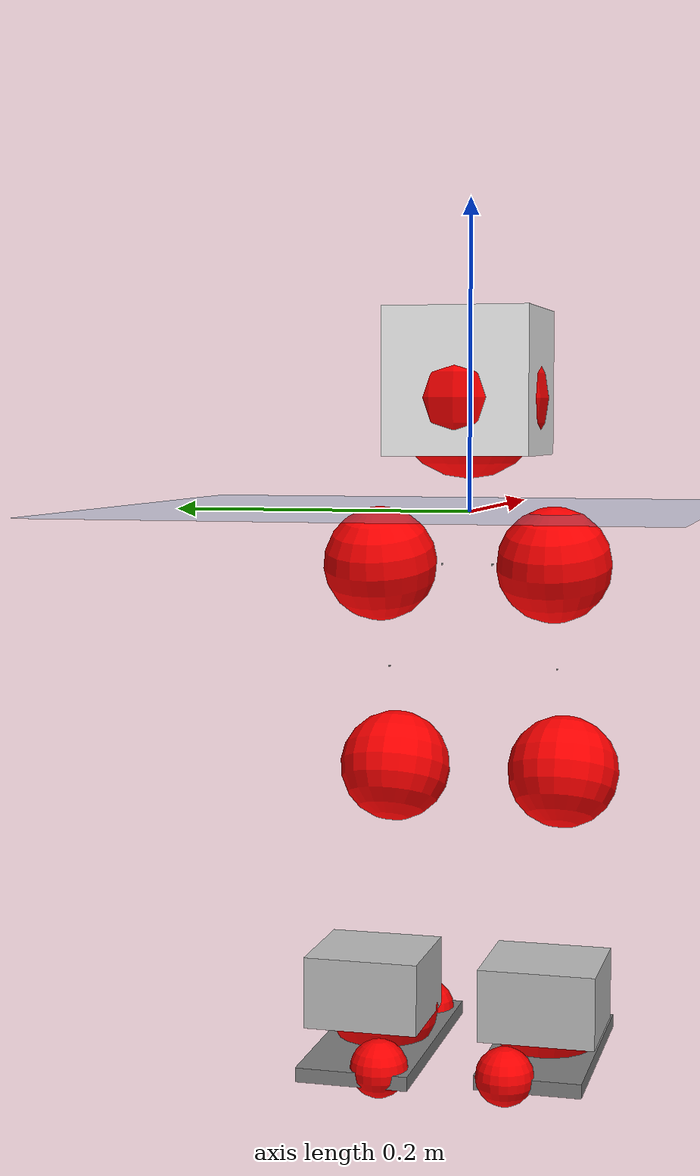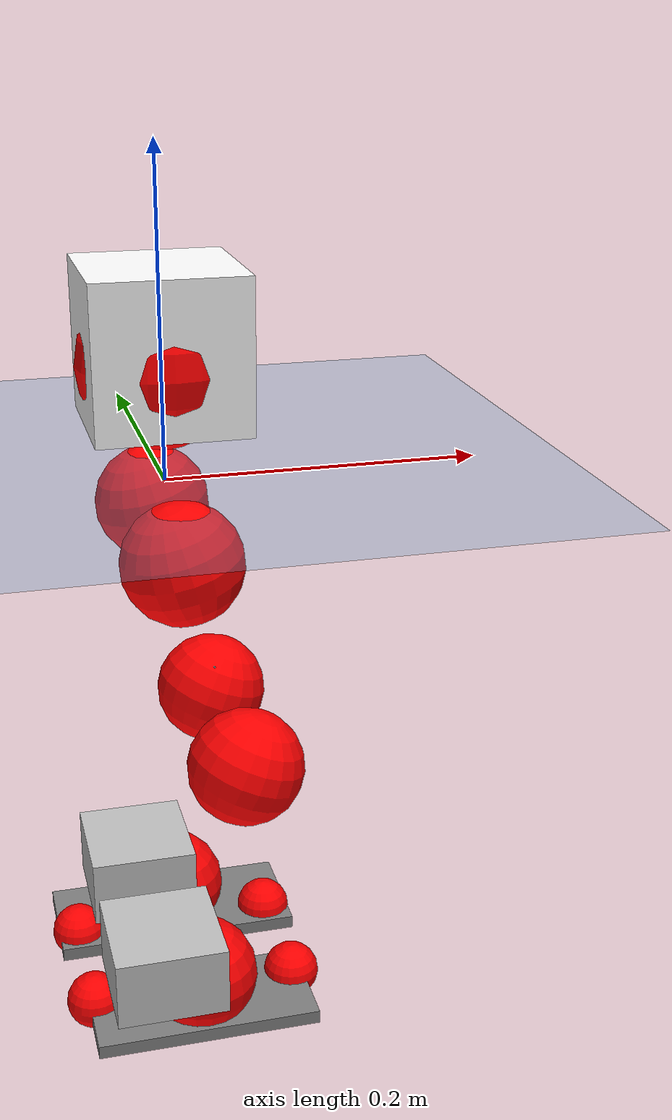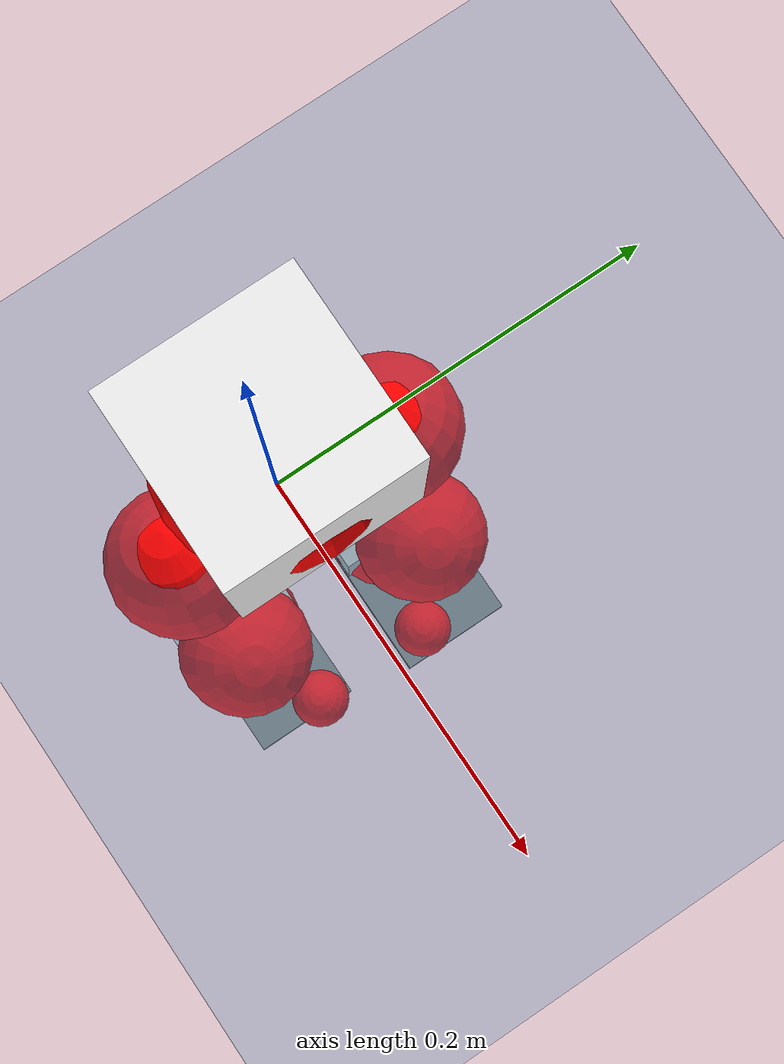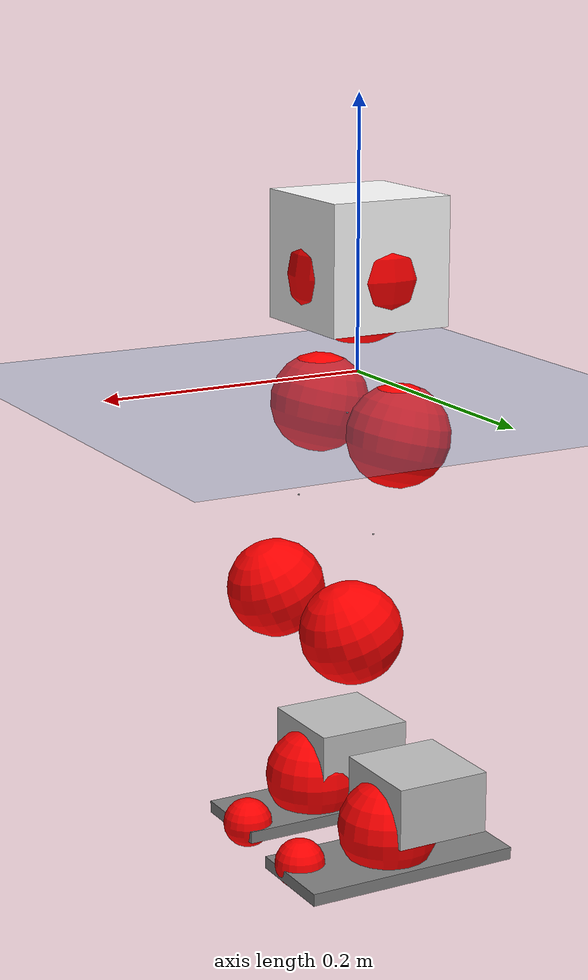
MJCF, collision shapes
<mujoco model="pi_12dof_release_v1">
  <compiler angle="radian" assetdir="assets" balanceinertia="true" inertiafromgeom="false"/>

  <option timestep="0.005" density="1.2" viscosity="2e-05"/>

  <size nkey="1"/>

  <visual>
    <quality shadowsize="8192"/>
    <map shadowclip="0.5"/>
  </visual>

  <default>
    <default class="/">
      <joint armature="0.01" damping="0.01" frictionloss="0.01"/>
      <geom contype="0" conaffinity="0" group="1" solref="-1000 -80"/>
      <site size="0.01 0.005 0.005" group="5"/>
      <general forcelimited="true" biastype="affine" gainprm="20" biasprm="0 -20 -0.5"/>
      <default class="foot">
        <geom size="0.0845 0.036 0.005" type="box" condim="6" group="4" priority="1" friction="0.9 0.2 0.2" solimp="0.015 1 0.005"/>
      </default>
      <default class="reward_collision_sphere">
        <geom group="5" rgba="1 0 0 1"/>
      </default>
    </default>
  </default>

  <asset>
    <texture type="skybox" colorspace="auto" name="//unnamed_texture_0" builtin="gradient" rgb1="0.95 0.95 0.95" rgb2="0.95 0.95 0.95" width="100" height="600"/>
    <texture type="2d" colorspace="auto" name="texplane" builtin="checker" rgb1="0.345 0.575 0.748" rgb2="0.345 0.575 0.748" markrgb="1 1 1" width="512" height="512"/>
    <material name="MatPlane" class="/" texture="texplane" texuniform="true" texrepeat="2 2" specular="0.9"/>
    <mesh name="baselink_1" class="/" file="baselink_1.STL"/>
    <mesh name="r_hip_pitch_link" class="/" file="r_hip_pitch_link.STL"/>
    <mesh name="r_hip_roll_link" class="/" file="r_hip_roll_link.STL"/>
    <mesh name="r_thigh_link" class="/" file="r_thigh_link.STL"/>
    <mesh name="r_calf_link" class="/" file="r_calf_link.STL"/>
    <mesh name="r_ankle_pitch_link" class="/" file="r_ankle_pitch_link.STL"/>
    <mesh name="r_ankle_roll_link" class="/" file="r_ankle_roll_link.STL"/>
    <mesh name="l_hip_pitch_link" class="/" file="l_hip_pitch_link.STL"/>
    <mesh name="l_hip_roll_link" class="/" file="l_hip_roll_link.STL"/>
    <mesh name="l_thigh_link" class="/" file="l_thigh_link.STL"/>
    <mesh name="l_calf_link" class="/" file="l_calf_link.STL"/>
    <mesh name="l_ankle_pitch_link" class="/" file="l_ankle_pitch_link.STL"/>
    <mesh name="l_ankle_roll_link" class="/" file="l_ankle_roll_link.STL"/>
  </asset>

  <worldbody>
    <geom name="floor" class="/" size="100 100 0.125" type="plane" group="0" material="MatPlane"/>
    <light name="toplight_shadow" class="/" pos="0 0 5" dir="0.0990148 0.0990148 -0.990148" type="directional" ambient="0.04 0.04 0.04" diffuse="0.55 0.55 0.55" specular="0.12 0.12 0.12"/>
    <light name="toplight_fill" class="/" pos="0 0 5" dir="0.0990148 0.0990148 -0.990148" type="directional" castshadow="false" ambient="0.04 0.04 0.04" diffuse="0.3 0.3 0.3" specular="0.08 0.08 0.08"/>
    <body name="trunk" pos="0.000148572 0.000564551 -0.000234606" quat="1 -7.46718e-06 -2.09045e-06 -7.7962e-06">
      <inertial pos="0.00222264 -0.000421699 0.0421794" quat="0.69347 0.0143944 0.011396 0.720252" mass="1.77729" diaginertia="0.0104186 0.00213822 0.00519478"/>
      <joint name="//unnamed_joint_0" type="free"/>
      <geom name="//unnamed_geom_1" class="/" type="mesh" density="0" rgba="1 1 1 1" mesh="baselink_1"/>
      <geom name="//unnamed_geom_2" class="/" size="0.0467283 0.0467283 0.0467283" pos="0 0 0.0836051" type="box" rgba="1 1 1 1"/>
      <geom name="//unnamed_geom_3" class="reward_collision_sphere" size="0.0514011" pos="0 0 0.0731545"/>
      <site name="imu" class="/" pos="-0.00328246 -0.00446551 0.00285247" size="0.00934565"/>
      <camera name="track" class="/" pos="0 -1.49621 0" quat="0.707107 0.707107 0 0" mode="trackcom"/>
      <camera name="ego_camera" class="/" pos="0.0757894 0 0.188112" quat="-0.5 -0.5 0.5 0.5"/>
      <body name="r_hip_pitch_link" pos="-0.000606871 -0.0157664 -0.0336432" quat="0.992203 -9.80707e-06 -0.124635 -0.000248252">
        <inertial pos="0.00123916 -0.04191 -0.000977599" quat="-0.0185522 0.706187 -0.0281594 0.707221" mass="0.303822" diaginertia="0.000114315 2.32729e-05 0.000104123"/>
        <joint name="r_hip_pitch_joint" class="/" pos="0 0 0" axis="0.00110283 -0.999999 0.000646439" range="-1.75222 1.26746" armature="0.0094245" damping="0.0118784" frictionloss="0.00913568"/>
        <geom name="//unnamed_geom_4" class="/" type="mesh" density="0" rgba="0.75294 0.75294 0.75294 1" mesh="r_hip_pitch_link"/>
        <geom name="//unnamed_geom_5" class="/" size="0.000467283 0.000467283 0.000467283" type="box" rgba="0.75294 0.75294 0.75294 1"/>
        <body name="r_hip_roll_link" pos="0.000538312 -0.0402272 0.000296376" quat="1 7.74624e-05 -0.000278875 0.000221515">
          <inertial pos="-0.00174052 -0.00110354 -0.0640401" quat="0.705747 -0.0789985 -0.082907 0.699148" mass="0.316859" diaginertia="0.000350338 6.50359e-05 0.000159225"/>
          <joint name="r_hip_roll_joint" class="/" pos="0 0 0" axis="-0.999992 -0.00372065 -0.00145469" range="-0.124243 0.489859" armature="0.00973498" damping="0.00295157" frictionloss="0.00949097"/>
          <geom name="//unnamed_geom_6" class="/" type="mesh" density="0" rgba="0.75294 0.75294 0.75294 1" mesh="r_hip_roll_link"/>
          <geom name="//unnamed_geom_7" class="/" size="0.000467283 0.000467283 0.000467283" type="box" rgba="0.75294 0.75294 0.75294 1"/>
          <geom name="//unnamed_geom_8" class="reward_collision_sphere" size="0.0373826"/>
          <body name="r_thigh_link" pos="0.000231623 0.000428191 -0.0719911" quat="1 -0.000211839 -0.000160766 0.000398251">
            <inertial pos="-0.000434539 0.000657046 -0.0504637" quat="0.737286 0.675581 0.000457286 -0.00061213" mass="0.0917877" diaginertia="0.000132498 2.2292e-05 7.15043e-05"/>
            <joint name="r_thigh_joint" class="/" pos="0 0 0" axis="0.000453963 4.33886e-05 -1" range="-0.285742 0.595769" armature="0.00956648" damping="0.00333223" frictionloss="0.0094116"/>
            <geom name="//unnamed_geom_9" class="/" type="mesh" density="0" rgba="0.75294 0.75294 0.75294 1" mesh="r_thigh_link"/>
            <geom name="//unnamed_geom_10" class="/" size="0.000467283 0.000467283 0.000467283" type="box" rgba="0.75294 0.75294 0.75294 1"/>
            <body name="r_calf_link" pos="0.000442159 -0.00169577 -0.0732149" quat="0.94764 -2.44886e-05 0.319341 -2.08651e-05">
              <inertial pos="0.000144501 -0.000251245 -0.0725136" quat="0.999987 -0.00227144 -0.00104582 0.00441026" mass="0.662265" diaginertia="0.00368935 0.000805785 0.000215605"/>
              <joint name="r_calf_joint" class="/" pos="0 0 0" axis="0.0042443 -0.99999 0.00100718" range="-1.62859 0.63117" armature="0.00914885" damping="0.00779318" frictionloss="0.00899071"/>
              <geom name="//unnamed_geom_11" class="/" type="mesh" density="0" rgba="0.75294 0.75294 0.75294 1" mesh="r_calf_link"/>
              <geom name="//unnamed_geom_12" class="/" size="0.000467283 0.000467283 0.000467283" type="box" rgba="0.75294 0.75294 0.75294 1"/>
              <geom name="//unnamed_geom_13" class="reward_collision_sphere" size="0.0373826"/>
              <body name="r_ankle_pitch_link" pos="0.000799421 0.00151443 -0.147034" quat="0.980055 0.000189924 -0.198724 0.000268382">
                <inertial pos="0.00569001 0.00178703 8.92282e-05" quat="0.00656139 0.706224 -0.00143812 0.707957" mass="0.141652" diaginertia="0.000321801 5.18192e-05 0.000149282"/>
                <joint name="r_ankle_pitch_joint" class="/" pos="0 0 0" axis="-0.000314624 -0.999991 0.00411305" range="-1.31299 0.509558" armature="0.00923944" damping="0.00483672" frictionloss="0.00942601"/>
                <geom name="//unnamed_geom_14" class="/" type="mesh" density="0" rgba="0.75294 0.75294 0.75294 1" mesh="r_ankle_pitch_link"/>
                <geom name="//unnamed_geom_15" class="/" size="0.036448 0.0373826 0.0233641" type="box" rgba="0.75294 0.75294 0.75294 1"/>
                <body name="r_ankle_roll_link" pos="0.0763753 0.00287985 0.000520685" quat="1 -2.12931e-06 4.4371e-06 -2.94028e-06">
                  <inertial pos="-0.0245316 0.000215664 -0.0160033" quat="0.562336 0.43044 0.430352 0.55973" mass="0.421847" diaginertia="0.0011994 0.000241524 0.000353512"/>
                  <joint name="r_ankle_roll_joint" class="/" pos="0 0 0" axis="-1 0.000224403 0.000166633" range="-0.165365 0.153919" armature="0.00936219" damping="0.00923438" frictionloss="0.00971949"/>
                  <geom name="//unnamed_geom_16" class="/" type="mesh" density="0" rgba="0.75294 0.75294 0.75294 1" mesh="r_ankle_roll_link"/>
                  <geom name="//unnamed_geom_17" class="/" type="mesh" rgba="0.75294 0.75294 0.75294 1" mesh="r_ankle_roll_link"/>
                  <geom name="right_foot" class="foot" size="0.0738085 0.0341797 0.00462226" pos="-0.0515368 0 -0.0459828"/>
                  <geom name="//unnamed_geom_19" class="reward_collision_sphere" size="0.0373826" pos="-0.0505263 0 -0.0209013"/>
                  <geom name="//unnamed_geom_20" class="reward_collision_sphere" size="0.0186913" pos="0.0151579 0.0149621 -0.0418026"/>
                  <geom name="//unnamed_geom_21" class="reward_collision_sphere" size="0.0186913" pos="-0.121263 0.0149621 -0.0418026"/>
                  <site name="right_foot" class="foot" pos="-0.0515368 0 -0.0459828" size="0.00934565"/>
                </body>
              </body>
            </body>
          </body>
        </body>
      </body>
      <body name="l_hip_pitch_link" pos="-0.000218797 0.0174068 -0.0338775" quat="0.992201 2.51005e-05 -0.124646 1.93168e-05">
        <inertial pos="0.00117339 0.0403164 -0.000860804" quat="-0.0396641 0.705566 0.0287228 0.706951" mass="0.317312" diaginertia="0.000134427 2.44993e-05 0.000124954"/>
        <joint name="l_hip_pitch_joint" class="/" pos="0 0 0" axis="0.000182697 1 0.000125524" range="-1.24799 1.75068" armature="0.00951421" damping="0.0035193" frictionloss="0.00894188"/>
        <geom name="//unnamed_geom_22" class="/" type="mesh" density="0" rgba="0.75294 0.75294 0.75294 1" mesh="l_hip_pitch_link"/>
        <geom name="//unnamed_geom_23" class="/" size="0.000467283 0.000467283 0.000467283" type="box" rgba="0.75294 0.75294 0.75294 1"/>
        <body name="l_hip_roll_link" pos="0.0011777 0.041902 -0.000693858" quat="1 -8.86459e-05 6.98522e-05 -0.000127184">
          <inertial pos="-0.00136105 5.86277e-05 -0.0645319" quat="0.700787 -0.0779247 -0.0750393 0.70512" mass="0.320492" diaginertia="0.000348525 6.45256e-05 0.00016026"/>
          <joint name="l_hip_roll_joint" class="/" pos="0 0 0" axis="-0.999989 0.00459197 -0.000422284" stiffness="0.000460438" range="-0.509563 0.120534" armature="0.00915356" damping="0.00679031" frictionloss="0.00925219"/>
          <geom name="//unnamed_geom_24" class="/" type="mesh" density="0" rgba="0.75294 0.75294 0.75294 1" mesh="l_hip_roll_link"/>
          <geom name="//unnamed_geom_25" class="/" size="0.000467283 0.000467283 0.000467283" type="box" rgba="0.75294 0.75294 0.75294 1"/>
          <geom name="//unnamed_geom_26" class="reward_collision_sphere" size="0.0373826"/>
          <body name="l_thigh_link" pos="0.00104218 -0.00136344 -0.0725529" quat="1 8.99071e-05 -1.92807e-05 -0.000153842">
            <inertial pos="0.000344722 -0.00152234 -0.0502142" quat="0.675992 0.736908 -0.00100337 0.000164478" mass="0.0899049" diaginertia="0.000130079 2.20017e-05 7.14561e-05"/>
            <joint name="l_thigh_joint" class="/" pos="0 0 0" axis="-0.000206479 0.000871855 -1" stiffness="0.000138191" range="-0.597892 0.299807" armature="0.00978846" damping="0.00190834" frictionloss="0.00929379"/>
            <geom name="//unnamed_geom_27" class="/" type="mesh" density="0" rgba="0.75294 0.75294 0.75294 1" mesh="l_thigh_link"/>
            <geom name="//unnamed_geom_28" class="/" size="0.000467283 0.000467283 0.000467283" type="box" rgba="0.75294 0.75294 0.75294 1"/>
            <body name="l_calf_link" pos="-0.000216651 0.000296553 -0.0726605" quat="0.947688 1.53152e-05 0.319198 2.06652e-05">
              <inertial pos="0.00055403 0.00190558 -0.0725656" quat="0.999981 0.00201114 -0.00197778 0.00544065" mass="0.655224" diaginertia="0.00363909 0.000808742 0.000216013"/>
              <joint name="l_calf_joint" class="/" pos="0 0 0" axis="0.00253813 0.999986 -0.00453812" stiffness="0.00284037" range="-0.64002 1.6582" armature="0.0094557" damping="0.00940413" frictionloss="0.00931609"/>
              <geom name="//unnamed_geom_29" class="/" type="mesh" density="0" rgba="0.75294 0.75294 0.75294 1" mesh="l_calf_link"/>
              <geom name="//unnamed_geom_30" class="/" size="0.000467283 0.000467283 0.000467283" type="box" rgba="0.75294 0.75294 0.75294 1"/>
              <geom name="//unnamed_geom_31" class="reward_collision_sphere" size="0.0373826"/>
              <body name="l_ankle_pitch_link" pos="0.000297012 0.000338716 -0.146562" quat="0.980092 -7.2461e-05 -0.198546 -8.87196e-05">
                <inertial pos="0.00494918 -0.000669694 -0.00095819" quat="-0.0046609 0.707131 0.00164092 0.707065" mass="0.144859" diaginertia="0.000326822 5.25673e-05 0.000150993"/>
                <joint name="l_ankle_pitch_joint" class="/" pos="0 0 0" axis="-0.000940107 0.999999 0.00045846" stiffness="0.00140474" range="-0.499091 1.2847" armature="0.00929145" damping="0.00897449" frictionloss="0.00933068"/>
                <geom name="//unnamed_geom_32" class="/" type="mesh" density="0" rgba="0.75294 0.75294 0.75294 1" mesh="l_ankle_pitch_link"/>
                <geom name="//unnamed_geom_33" class="/" size="0.036448 0.0373826 0.0233641" type="box" rgba="0.75294 0.75294 0.75294 1"/>
                <body name="l_ankle_roll_link" pos="0.0747408 -0.000554312 -0.000485061" quat="1 -0.000238671 0.000346454 0.000104707">
                  <inertial pos="-0.0239804 -0.000592511 -0.0151336" quat="0.560866 0.429953 0.433837 0.558888" mass="0.426001" diaginertia="0.00119897 0.00024146 0.000356131"/>
                  <joint name="l_ankle_roll_joint" class="/" pos="0 0 0" axis="-0.999985 -0.00382769 0.00380858" stiffness="0.00209946" range="-0.138335 0.165975" armature="0.00952208" damping="0.00972551" frictionloss="0.00942244"/>
                  <geom name="//unnamed_geom_34" class="/" type="mesh" density="0" rgba="0.75294 0.75294 0.75294 1" mesh="l_ankle_roll_link"/>
                  <geom name="//unnamed_geom_35" class="/" type="mesh" rgba="0.75294 0.75294 0.75294 1" mesh="l_ankle_roll_link"/>
                  <geom name="left_foot" class="foot" size="0.0837559 0.0366283 0.00461656" pos="-0.0515368 0 -0.0459828"/>
                  <geom name="//unnamed_geom_37" class="reward_collision_sphere" size="0.0373826" pos="-0.0505263 0 -0.0209013"/>
                  <geom name="//unnamed_geom_38" class="reward_collision_sphere" size="0.0186913" pos="0.0151579 -0.0149621 -0.0418026"/>
                  <geom name="//unnamed_geom_39" class="reward_collision_sphere" size="0.0186913" pos="-0.121263 -0.0149621 -0.0418026"/>
                  <site name="left_foot" class="foot" pos="-0.0515368 0 -0.0459828" size="0.00934565"/>
                </body>
              </body>
            </body>
          </body>
        </body>
      </body>
    </body>
  </worldbody>

  <contact>
    <pair class="/" geom1="floor" geom2="right_foot" name="//unnamed_contact_1"/>
    <pair class="/" geom1="floor" geom2="left_foot" name="//unnamed_contact_0"/>
  </contact>

  <actuator>
    <general name="r_hip_pitch_joint" class="/" joint="r_hip_pitch_joint" forcerange="-19.3647 19.3647" gainprm="19.1854" biasprm="0 -19.1854 -0.462513"/>
    <general name="r_hip_roll_joint" class="/" joint="r_hip_roll_joint" forcerange="-19.7222 19.7222" gainprm="19.1854" biasprm="0 -19.1854 -0.462513"/>
    <general name="r_thigh_joint" class="/" joint="r_thigh_joint" forcerange="-19.0463 19.0463" gainprm="19.1854" biasprm="0 -19.1854 -0.462513"/>
    <general name="r_calf_joint" class="/" joint="r_calf_joint" forcerange="-19.5852 19.5852" gainprm="19.1854" biasprm="0 -19.1854 -0.462513"/>
    <general name="r_ankle_pitch_joint" class="/" joint="r_ankle_pitch_joint" forcerange="-19.8899 19.8899" gainprm="19.1854" biasprm="0 -19.1854 -0.462513"/>
    <general name="r_ankle_roll_joint" class="/" joint="r_ankle_roll_joint" forcerange="-19.9011 19.9011" gainprm="19.1854" biasprm="0 -19.1854 -0.462513"/>
    <general name="l_hip_pitch_joint" class="/" joint="l_hip_pitch_joint" forcerange="-20.4425 20.4425" gainprm="19.1854" biasprm="0 -19.1854 -0.462513"/>
    <general name="l_hip_roll_joint" class="/" joint="l_hip_roll_joint" forcerange="-20.2697 20.2697" gainprm="19.1854" biasprm="0 -19.1854 -0.462513"/>
    <general name="l_thigh_joint" class="/" joint="l_thigh_joint" forcerange="-19.5016 19.5016" gainprm="19.1854" biasprm="0 -19.1854 -0.462513"/>
    <general name="l_calf_joint" class="/" joint="l_calf_joint" forcerange="-19.9405 19.9405" gainprm="19.1854" biasprm="0 -19.1854 -0.462513"/>
    <general name="l_ankle_pitch_joint" class="/" joint="l_ankle_pitch_joint" forcerange="-19.9209 19.9209" gainprm="19.1854" biasprm="0 -19.1854 -0.462513"/>
    <general name="l_ankle_roll_joint" class="/" joint="l_ankle_roll_joint" forcerange="-18.9721 18.9721" gainprm="19.1854" biasprm="0 -19.1854 -0.462513"/>
  </actuator>

  <sensor>
    <gyro site="imu" name="imu_angular_velocity"/>
    <velocimeter site="imu" name="imu_linear_velocity"/>
    <framelinvel objtype="site" objname="left_foot" name="left_foot_global_linear_velocity"/>
    <framelinvel objtype="site" objname="right_foot" name="right_foot_global_linear_velocity"/>
  </sensor>

  <keyframe>
    <key name="home" qpos="0 0 0.291 1 0 0 0 0.4 0 0 -0.8 0.4 0 -0.4 0 0 0.8 -0.4 0"/>
  </keyframe>
</mujoco>
